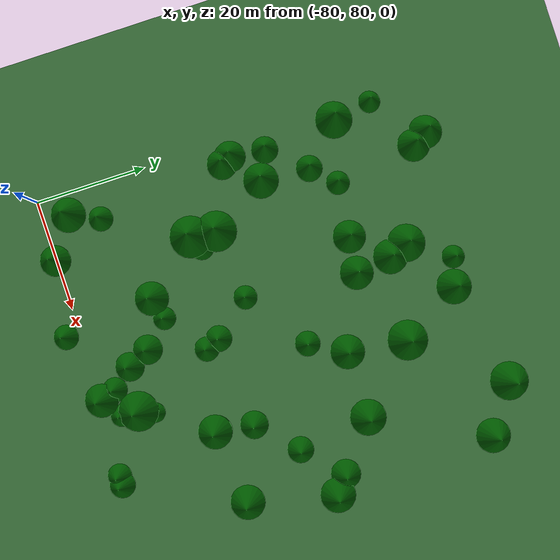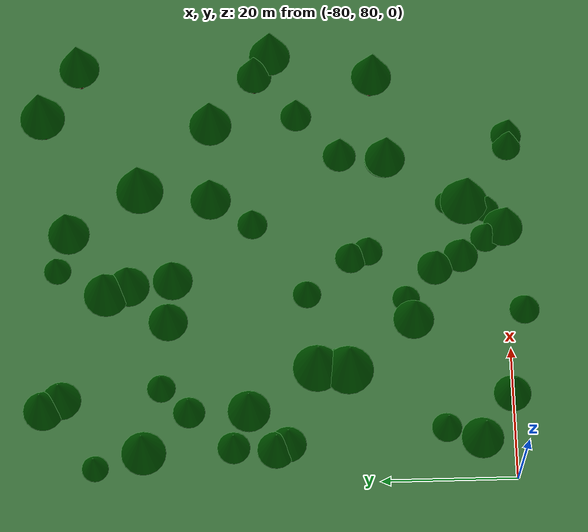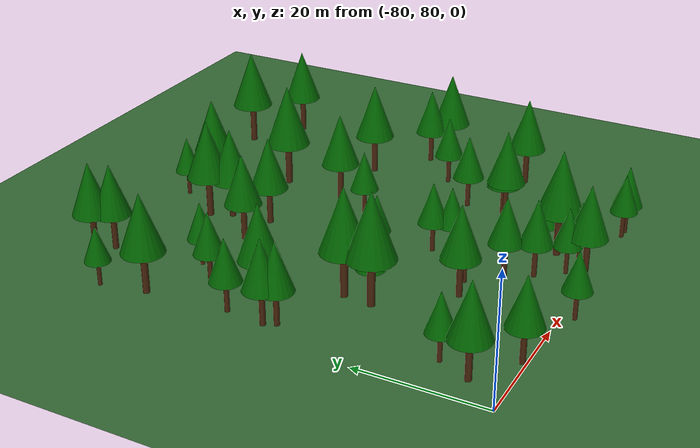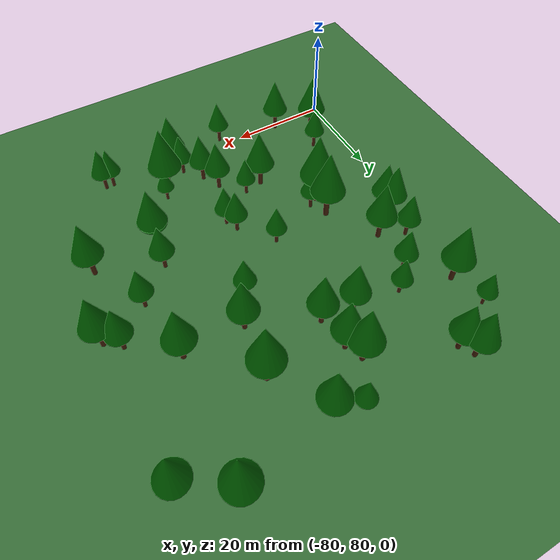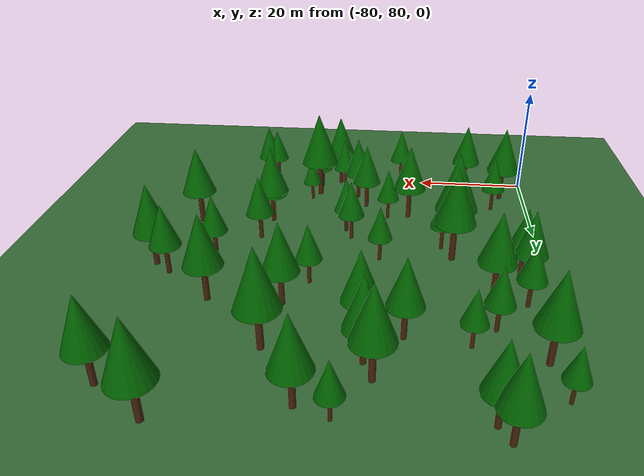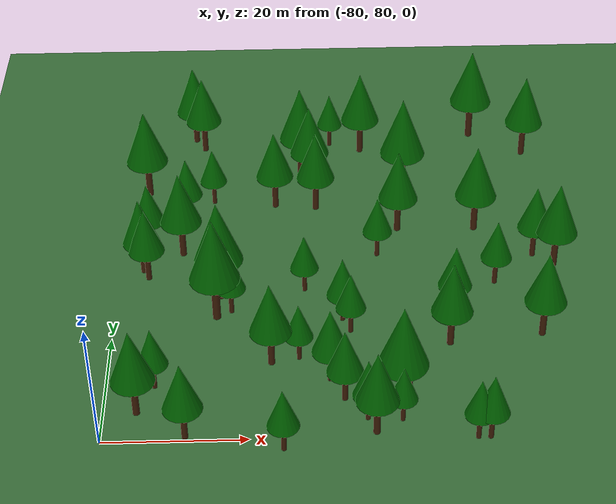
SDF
<sdf version="1.9">
 <world name="Forest_world">
  <model name="ground_plane">
   <static>true</static>
   <link name="link">
    <collision name="collision">
     <geometry><plane><normal>0 0 1</normal><size>500 500</size></plane></geometry>
    </collision>
    <visual name="visual">
     <geometry><plane><normal>0 0 1</normal><size>500 500</size></plane></geometry>
     <material><ambient>0.2 0.4 0.2 1</ambient><diffuse>0.2 0.4 0.2 1</diffuse></material>
    </visual>
   </link>
  </model>
  <model name="tree_2">
   <static>true</static>
   <pose>-51.11 136.40 0 0 0 0</pose>
   <link name="link">
    <collision name="trunk_col">
     <pose>0 0 3.07 0 0 0</pose>
     <geometry><cylinder><radius>0.49</radius><length>6.15</length></cylinder></geometry>
    </collision>
    <visual name="trunk_vis">
     <pose>0 0 3.07 0 0 0</pose>
     <geometry><cylinder><radius>0.49</radius><length>6.15</length></cylinder></geometry>
     <material><ambient>0.3 0.15 0.05 1</ambient><diffuse>0.3 0.15 0.05 1</diffuse></material>
    </visual>
    <collision name="leaves_col">
     <pose>0 0 10.45 0 0 0</pose>
     <geometry><cone><radius>3.07</radius><length>8.60</length></cone></geometry>
    </collision>
    <visual name="leaves_vis">
     <pose>0 0 10.45 0 0 0</pose>
     <geometry><cone><radius>3.07</radius><length>8.60</length></cone></geometry>
     <material><ambient>0.0 0.4 0.0 1</ambient><diffuse>0.0 0.4 0.0 1</diffuse></material>
    </visual>
   </link>
  </model>
  <model name="tree_9">
   <static>true</static>
   <pose>-39.32 83.02 0 0 0 0</pose>
   <link name="link">
    <collision name="trunk_col">
     <pose>0 0 1.98 0 0 0</pose>
     <geometry><cylinder><radius>0.32</radius><length>3.95</length></cylinder></geometry>
    </collision>
    <visual name="trunk_vis">
     <pose>0 0 1.98 0 0 0</pose>
     <geometry><cylinder><radius>0.32</radius><length>3.95</length></cylinder></geometry>
     <material><ambient>0.3 0.15 0.05 1</ambient><diffuse>0.3 0.15 0.05 1</diffuse></material>
    </visual>
    <collision name="leaves_col">
     <pose>0 0 6.72 0 0 0</pose>
     <geometry><cone><radius>1.98</radius><length>5.54</length></cone></geometry>
    </collision>
    <visual name="leaves_vis">
     <pose>0 0 6.72 0 0 0</pose>
     <geometry><cone><radius>1.98</radius><length>5.54</length></cone></geometry>
     <material><ambient>0.0 0.4 0.0 1</ambient><diffuse>0.0 0.4 0.0 1</diffuse></material>
    </visual>
   </link>
  </model>
  <model name="tree_11">
   <static>true</static>
   <pose>-41.16 118.00 0 0 0 0</pose>
   <link name="link">
    <collision name="trunk_col">
     <pose>0 0 2.25 0 0 0</pose>
     <geometry><cylinder><radius>0.36</radius><length>4.49</length></cylinder></geometry>
    </collision>
    <visual name="trunk_vis">
     <pose>0 0 2.25 0 0 0</pose>
     <geometry><cylinder><radius>0.36</radius><length>4.49</length></cylinder></geometry>
     <material><ambient>0.3 0.15 0.05 1</ambient><diffuse>0.3 0.15 0.05 1</diffuse></material>
    </visual>
    <collision name="leaves_col">
     <pose>0 0 7.64 0 0 0</pose>
     <geometry><cone><radius>2.25</radius><length>6.29</length></cone></geometry>
    </collision>
    <visual name="leaves_vis">
     <pose>0 0 7.64 0 0 0</pose>
     <geometry><cone><radius>2.25</radius><length>6.29</length></cone></geometry>
     <material><ambient>0.0 0.4 0.0 1</ambient><diffuse>0.0 0.4 0.0 1</diffuse></material>
    </visual>
   </link>
  </model>
  <model name="tree_12">
   <static>true</static>
   <pose>-63.00 105.64 0 0 0 0</pose>
   <link name="link">
    <collision name="trunk_col">
     <pose>0 0 2.24 0 0 0</pose>
     <geometry><cylinder><radius>0.36</radius><length>4.47</length></cylinder></geometry>
    </collision>
    <visual name="trunk_vis">
     <pose>0 0 2.24 0 0 0</pose>
     <geometry><cylinder><radius>0.36</radius><length>4.47</length></cylinder></geometry>
     <material><ambient>0.3 0.15 0.05 1</ambient><diffuse>0.3 0.15 0.05 1</diffuse></material>
    </visual>
    <collision name="leaves_col">
     <pose>0 0 7.61 0 0 0</pose>
     <geometry><cone><radius>2.24</radius><length>6.26</length></cone></geometry>
    </collision>
    <visual name="leaves_vis">
     <pose>0 0 7.61 0 0 0</pose>
     <geometry><cone><radius>2.24</radius><length>6.26</length></cone></geometry>
     <material><ambient>0.0 0.4 0.0 1</ambient><diffuse>0.0 0.4 0.0 1</diffuse></material>
    </visual>
   </link>
  </model>
  <model name="tree_17">
   <static>true</static>
   <pose>-78.15 141.54 0 0 0 0</pose>
   <link name="link">
    <collision name="trunk_col">
     <pose>0 0 1.96 0 0 0</pose>
     <geometry><cylinder><radius>0.31</radius><length>3.92</length></cylinder></geometry>
    </collision>
    <visual name="trunk_vis">
     <pose>0 0 1.96 0 0 0</pose>
     <geometry><cylinder><radius>0.31</radius><length>3.92</length></cylinder></geometry>
     <material><ambient>0.3 0.15 0.05 1</ambient><diffuse>0.3 0.15 0.05 1</diffuse></material>
    </visual>
    <collision name="leaves_col">
     <pose>0 0 6.67 0 0 0</pose>
     <geometry><cone><radius>1.96</radius><length>5.49</length></cone></geometry>
    </collision>
    <visual name="leaves_vis">
     <pose>0 0 6.67 0 0 0</pose>
     <geometry><cone><radius>1.96</radius><length>5.49</length></cone></geometry>
     <material><ambient>0.0 0.4 0.0 1</ambient><diffuse>0.0 0.4 0.0 1</diffuse></material>
    </visual>
   </link>
  </model>
  <model name="tree_18">
   <static>true</static>
   <pose>-75.57 113.54 0 0 0 0</pose>
   <link name="link">
    <collision name="trunk_col">
     <pose>0 0 2.69 0 0 0</pose>
     <geometry><cylinder><radius>0.43</radius><length>5.37</length></cylinder></geometry>
    </collision>
    <visual name="trunk_vis">
     <pose>0 0 2.69 0 0 0</pose>
     <geometry><cylinder><radius>0.43</radius><length>5.37</length></cylinder></geometry>
     <material><ambient>0.3 0.15 0.05 1</ambient><diffuse>0.3 0.15 0.05 1</diffuse></material>
    </visual>
    <collision name="leaves_col">
     <pose>0 0 9.14 0 0 0</pose>
     <geometry><cone><radius>2.69</radius><length>7.52</length></cone></geometry>
    </collision>
    <visual name="leaves_vis">
     <pose>0 0 9.14 0 0 0</pose>
     <geometry><cone><radius>2.69</radius><length>7.52</length></cone></geometry>
     <material><ambient>0.0 0.4 0.0 1</ambient><diffuse>0.0 0.4 0.0 1</diffuse></material>
    </visual>
   </link>
  </model>
  <model name="tree_26">
   <static>true</static>
   <pose>-76.75 134.41 0 0 0 0</pose>
   <link name="link">
    <collision name="trunk_col">
     <pose>0 0 3.26 0 0 0</pose>
     <geometry><cylinder><radius>0.52</radius><length>6.52</length></cylinder></geometry>
    </collision>
    <visual name="trunk_vis">
     <pose>0 0 3.26 0 0 0</pose>
     <geometry><cylinder><radius>0.52</radius><length>6.52</length></cylinder></geometry>
     <material><ambient>0.3 0.15 0.05 1</ambient><diffuse>0.3 0.15 0.05 1</diffuse></material>
    </visual>
    <collision name="leaves_col">
     <pose>0 0 11.08 0 0 0</pose>
     <geometry><cone><radius>3.26</radius><length>9.13</length></cone></geometry>
    </collision>
    <visual name="leaves_vis">
     <pose>0 0 11.08 0 0 0</pose>
     <geometry><cone><radius>3.26</radius><length>9.13</length></cone></geometry>
     <material><ambient>0.0 0.4 0.0 1</ambient><diffuse>0.0 0.4 0.0 1</diffuse></material>
    </visual>
   </link>
  </model>
  <model name="tree_28">
   <static>true</static>
   <pose>-53.22 95.50 0 0 0 0</pose>
   <link name="link">
    <collision name="trunk_col">
     <pose>0 0 2.05 0 0 0</pose>
     <geometry><cylinder><radius>0.33</radius><length>4.10</length></cylinder></geometry>
    </collision>
    <visual name="trunk_vis">
     <pose>0 0 2.05 0 0 0</pose>
     <geometry><cylinder><radius>0.33</radius><length>4.10</length></cylinder></geometry>
     <material><ambient>0.3 0.15 0.05 1</ambient><diffuse>0.3 0.15 0.05 1</diffuse></material>
    </visual>
    <collision name="leaves_col">
     <pose>0 0 6.97 0 0 0</pose>
     <geometry><cone><radius>2.05</radius><length>5.74</length></cone></geometry>
    </collision>
    <visual name="leaves_vis">
     <pose>0 0 6.97 0 0 0</pose>
     <geometry><cone><radius>2.05</radius><length>5.74</length></cone></geometry>
     <material><ambient>0.0 0.4 0.0 1</ambient><diffuse>0.0 0.4 0.0 1</diffuse></material>
    </visual>
   </link>
  </model>
  <model name="tree_33">
   <static>true</static>
   <pose>-52.27 110.15 0 0 0 0</pose>
   <link name="link">
    <collision name="trunk_col">
     <pose>0 0 2.12 0 0 0</pose>
     <geometry><cylinder><radius>0.34</radius><length>4.23</length></cylinder></geometry>
    </collision>
    <visual name="trunk_vis">
     <pose>0 0 2.12 0 0 0</pose>
     <geometry><cylinder><radius>0.34</radius><length>4.23</length></cylinder></geometry>
     <material><ambient>0.3 0.15 0.05 1</ambient><diffuse>0.3 0.15 0.05 1</diffuse></material>
    </visual>
    <collision name="leaves_col">
     <pose>0 0 7.20 0 0 0</pose>
     <geometry><cone><radius>2.12</radius><length>5.93</length></cone></geometry>
    </collision>
    <visual name="leaves_vis">
     <pose>0 0 7.20 0 0 0</pose>
     <geometry><cone><radius>2.12</radius><length>5.93</length></cone></geometry>
     <material><ambient>0.0 0.4 0.0 1</ambient><diffuse>0.0 0.4 0.0 1</diffuse></material>
    </visual>
   </link>
  </model>
  <model name="tree_53">
   <static>true</static>
   <pose>-68.32 146.31 0 0 0 0</pose>
   <link name="link">
    <collision name="trunk_col">
     <pose>0 0 2.88 0 0 0</pose>
     <geometry><cylinder><radius>0.46</radius><length>5.76</length></cylinder></geometry>
    </collision>
    <visual name="trunk_vis">
     <pose>0 0 2.88 0 0 0</pose>
     <geometry><cylinder><radius>0.46</radius><length>5.76</length></cylinder></geometry>
     <material><ambient>0.3 0.15 0.05 1</ambient><diffuse>0.3 0.15 0.05 1</diffuse></material>
    </visual>
    <collision name="leaves_col">
     <pose>0 0 9.79 0 0 0</pose>
     <geometry><cone><radius>2.88</radius><length>8.06</length></cone></geometry>
    </collision>
    <visual name="leaves_vis">
     <pose>0 0 9.79 0 0 0</pose>
     <geometry><cone><radius>2.88</radius><length>8.06</length></cone></geometry>
     <material><ambient>0.0 0.4 0.0 1</ambient><diffuse>0.0 0.4 0.0 1</diffuse></material>
    </visual>
   </link>
  </model>
  <model name="tree_69">
   <static>true</static>
   <pose>-17.45 117.24 0 0 0 0</pose>
   <link name="link">
    <collision name="trunk_col">
     <pose>0 0 2.65 0 0 0</pose>
     <geometry><cylinder><radius>0.42</radius><length>5.30</length></cylinder></geometry>
    </collision>
    <visual name="trunk_vis">
     <pose>0 0 2.65 0 0 0</pose>
     <geometry><cylinder><radius>0.42</radius><length>5.30</length></cylinder></geometry>
     <material><ambient>0.3 0.15 0.05 1</ambient><diffuse>0.3 0.15 0.05 1</diffuse></material>
    </visual>
    <collision name="leaves_col">
     <pose>0 0 9.01 0 0 0</pose>
     <geometry><cone><radius>2.65</radius><length>7.42</length></cone></geometry>
    </collision>
    <visual name="leaves_vis">
     <pose>0 0 9.01 0 0 0</pose>
     <geometry><cone><radius>2.65</radius><length>7.42</length></cone></geometry>
     <material><ambient>0.0 0.4 0.0 1</ambient><diffuse>0.0 0.4 0.0 1</diffuse></material>
    </visual>
   </link>
  </model>
  <model name="tree_79">
   <static>true</static>
   <pose>-25.77 123.99 0 0 0 0</pose>
   <link name="link">
    <collision name="trunk_col">
     <pose>0 0 3.20 0 0 0</pose>
     <geometry><cylinder><radius>0.51</radius><length>6.39</length></cylinder></geometry>
    </collision>
    <visual name="trunk_vis">
     <pose>0 0 3.20 0 0 0</pose>
     <geometry><cylinder><radius>0.51</radius><length>6.39</length></cylinder></geometry>
     <material><ambient>0.3 0.15 0.05 1</ambient><diffuse>0.3 0.15 0.05 1</diffuse></material>
    </visual>
    <collision name="leaves_col">
     <pose>0 0 10.86 0 0 0</pose>
     <geometry><cone><radius>3.20</radius><length>8.95</length></cone></geometry>
    </collision>
    <visual name="leaves_vis">
     <pose>0 0 10.86 0 0 0</pose>
     <geometry><cone><radius>3.20</radius><length>8.95</length></cone></geometry>
     <material><ambient>0.0 0.4 0.0 1</ambient><diffuse>0.0 0.4 0.0 1</diffuse></material>
    </visual>
   </link>
  </model>
  <model name="tree_84">
   <static>true</static>
   <pose>-24.20 149.21 0 0 0 0</pose>
   <link name="link">
    <collision name="trunk_col">
     <pose>0 0 3.39 0 0 0</pose>
     <geometry><cylinder><radius>0.54</radius><length>6.77</length></cylinder></geometry>
    </collision>
    <visual name="trunk_vis">
     <pose>0 0 3.39 0 0 0</pose>
     <geometry><cylinder><radius>0.54</radius><length>6.77</length></cylinder></geometry>
     <material><ambient>0.3 0.15 0.05 1</ambient><diffuse>0.3 0.15 0.05 1</diffuse></material>
    </visual>
    <collision name="leaves_col">
     <pose>0 0 11.51 0 0 0</pose>
     <geometry><cone><radius>3.39</radius><length>9.48</length></cone></geometry>
    </collision>
    <visual name="leaves_vis">
     <pose>0 0 11.51 0 0 0</pose>
     <geometry><cone><radius>3.39</radius><length>9.48</length></cone></geometry>
     <material><ambient>0.0 0.4 0.0 1</ambient><diffuse>0.0 0.4 0.0 1</diffuse></material>
    </visual>
   </link>
  </model>
  <model name="tree_85">
   <static>true</static>
   <pose>-44.02 83.40 0 0 0 0</pose>
   <link name="link">
    <collision name="trunk_col">
     <pose>0 0 2.21 0 0 0</pose>
     <geometry><cylinder><radius>0.35</radius><length>4.41</length></cylinder></geometry>
    </collision>
    <visual name="trunk_vis">
     <pose>0 0 2.21 0 0 0</pose>
     <geometry><cylinder><radius>0.35</radius><length>4.41</length></cylinder></geometry>
     <material><ambient>0.3 0.15 0.05 1</ambient><diffuse>0.3 0.15 0.05 1</diffuse></material>
    </visual>
    <collision name="leaves_col">
     <pose>0 0 7.50 0 0 0</pose>
     <geometry><cone><radius>2.21</radius><length>6.17</length></cone></geometry>
    </collision>
    <visual name="leaves_vis">
     <pose>0 0 7.50 0 0 0</pose>
     <geometry><cone><radius>2.21</radius><length>6.17</length></cone></geometry>
     <material><ambient>0.0 0.4 0.0 1</ambient><diffuse>0.0 0.4 0.0 1</diffuse></material>
    </visual>
   </link>
  </model>
  <model name="tree_88">
   <static>true</static>
   <pose>-48.90 91.12 0 0 0 0</pose>
   <link name="link">
    <collision name="trunk_col">
     <pose>0 0 2.64 0 0 0</pose>
     <geometry><cylinder><radius>0.42</radius><length>5.28</length></cylinder></geometry>
    </collision>
    <visual name="trunk_vis">
     <pose>0 0 2.64 0 0 0</pose>
     <geometry><cylinder><radius>0.42</radius><length>5.28</length></cylinder></geometry>
     <material><ambient>0.3 0.15 0.05 1</ambient><diffuse>0.3 0.15 0.05 1</diffuse></material>
    </visual>
    <collision name="leaves_col">
     <pose>0 0 8.98 0 0 0</pose>
     <geometry><cone><radius>2.64</radius><length>7.39</length></cone></geometry>
    </collision>
    <visual name="leaves_vis">
     <pose>0 0 8.98 0 0 0</pose>
     <geometry><cone><radius>2.64</radius><length>7.39</length></cone></geometry>
     <material><ambient>0.0 0.4 0.0 1</ambient><diffuse>0.0 0.4 0.0 1</diffuse></material>
    </visual>
   </link>
  </model>
  <model name="tree_92">
   <static>true</static>
   <pose>-70.23 127.83 0 0 0 0</pose>
   <link name="link">
    <collision name="trunk_col">
     <pose>0 0 2.36 0 0 0</pose>
     <geometry><cylinder><radius>0.38</radius><length>4.73</length></cylinder></geometry>
    </collision>
    <visual name="trunk_vis">
     <pose>0 0 2.36 0 0 0</pose>
     <geometry><cylinder><radius>0.38</radius><length>4.73</length></cylinder></geometry>
     <material><ambient>0.3 0.15 0.05 1</ambient><diffuse>0.3 0.15 0.05 1</diffuse></material>
    </visual>
    <collision name="leaves_col">
     <pose>0 0 8.04 0 0 0</pose>
     <geometry><cone><radius>2.36</radius><length>6.62</length></cone></geometry>
    </collision>
    <visual name="leaves_vis">
     <pose>0 0 8.04 0 0 0</pose>
     <geometry><cone><radius>2.36</radius><length>6.62</length></cone></geometry>
     <material><ambient>0.0 0.4 0.0 1</ambient><diffuse>0.0 0.4 0.0 1</diffuse></material>
    </visual>
   </link>
  </model>
  <model name="tree_94">
   <static>true</static>
   <pose>-42.71 145.27 0 0 0 0</pose>
   <link name="link">
    <collision name="trunk_col">
     <pose>0 0 3.10 0 0 0</pose>
     <geometry><cylinder><radius>0.50</radius><length>6.20</length></cylinder></geometry>
    </collision>
    <visual name="trunk_vis">
     <pose>0 0 3.10 0 0 0</pose>
     <geometry><cylinder><radius>0.50</radius><length>6.20</length></cylinder></geometry>
     <material><ambient>0.3 0.15 0.05 1</ambient><diffuse>0.3 0.15 0.05 1</diffuse></material>
    </visual>
    <collision name="leaves_col">
     <pose>0 0 10.55 0 0 0</pose>
     <geometry><cone><radius>3.10</radius><length>8.69</length></cone></geometry>
    </collision>
    <visual name="leaves_vis">
     <pose>0 0 10.55 0 0 0</pose>
     <geometry><cone><radius>3.10</radius><length>8.69</length></cone></geometry>
     <material><ambient>0.0 0.4 0.0 1</ambient><diffuse>0.0 0.4 0.0 1</diffuse></material>
    </visual>
   </link>
  </model>
  <model name="tree_97">
   <static>true</static>
   <pose>-75.46 85.39 0 0 0 0</pose>
   <link name="link">
    <collision name="trunk_col">
     <pose>0 0 3.08 0 0 0</pose>
     <geometry><cylinder><radius>0.49</radius><length>6.15</length></cylinder></geometry>
    </collision>
    <visual name="trunk_vis">
     <pose>0 0 3.08 0 0 0</pose>
     <geometry><cylinder><radius>0.49</radius><length>6.15</length></cylinder></geometry>
     <material><ambient>0.3 0.15 0.05 1</ambient><diffuse>0.3 0.15 0.05 1</diffuse></material>
    </visual>
    <collision name="leaves_col">
     <pose>0 0 10.46 0 0 0</pose>
     <geometry><cone><radius>3.08</radius><length>8.61</length></cone></geometry>
    </collision>
    <visual name="leaves_vis">
     <pose>0 0 10.46 0 0 0</pose>
     <geometry><cone><radius>3.08</radius><length>8.61</length></cone></geometry>
     <material><ambient>0.0 0.4 0.0 1</ambient><diffuse>0.0 0.4 0.0 1</diffuse></material>
    </visual>
   </link>
  </model>
  <model name="tree_105">
   <static>true</static>
   <pose>-31.66 98.21 0 0 0 0</pose>
   <link name="link">
    <collision name="trunk_col">
     <pose>0 0 2.77 0 0 0</pose>
     <geometry><cylinder><radius>0.44</radius><length>5.55</length></cylinder></geometry>
    </collision>
    <visual name="trunk_vis">
     <pose>0 0 2.77 0 0 0</pose>
     <geometry><cylinder><radius>0.44</radius><length>5.55</length></cylinder></geometry>
     <material><ambient>0.3 0.15 0.05 1</ambient><diffuse>0.3 0.15 0.05 1</diffuse></material>
    </visual>
    <collision name="leaves_col">
     <pose>0 0 9.43 0 0 0</pose>
     <geometry><cone><radius>2.77</radius><length>7.77</length></cone></geometry>
    </collision>
    <visual name="leaves_vis">
     <pose>0 0 9.43 0 0 0</pose>
     <geometry><cone><radius>2.77</radius><length>7.77</length></cone></geometry>
     <material><ambient>0.0 0.4 0.0 1</ambient><diffuse>0.0 0.4 0.0 1</diffuse></material>
    </visual>
   </link>
  </model>
  <model name="tree_107">
   <static>true</static>
   <pose>-14.53 114.82 0 0 0 0</pose>
   <link name="link">
    <collision name="trunk_col">
     <pose>0 0 3.12 0 0 0</pose>
     <geometry><cylinder><radius>0.50</radius><length>6.24</length></cylinder></geometry>
    </collision>
    <visual name="trunk_vis">
     <pose>0 0 3.12 0 0 0</pose>
     <geometry><cylinder><radius>0.50</radius><length>6.24</length></cylinder></geometry>
     <material><ambient>0.3 0.15 0.05 1</ambient><diffuse>0.3 0.15 0.05 1</diffuse></material>
    </visual>
    <collision name="leaves_col">
     <pose>0 0 10.61 0 0 0</pose>
     <geometry><cone><radius>3.12</radius><length>8.74</length></cone></geometry>
    </collision>
    <visual name="leaves_vis">
     <pose>0 0 10.61 0 0 0</pose>
     <geometry><cone><radius>3.12</radius><length>8.74</length></cone></geometry>
     <material><ambient>0.0 0.4 0.0 1</ambient><diffuse>0.0 0.4 0.0 1</diffuse></material>
    </visual>
   </link>
  </model>
  <model name="tree_108">
   <static>true</static>
   <pose>-76.42 115.26 0 0 0 0</pose>
   <link name="link">
    <collision name="trunk_col">
     <pose>0 0 2.78 0 0 0</pose>
     <geometry><cylinder><radius>0.44</radius><length>5.56</length></cylinder></geometry>
    </collision>
    <visual name="trunk_vis">
     <pose>0 0 2.78 0 0 0</pose>
     <geometry><cylinder><radius>0.44</radius><length>5.56</length></cylinder></geometry>
     <material><ambient>0.3 0.15 0.05 1</ambient><diffuse>0.3 0.15 0.05 1</diffuse></material>
    </visual>
    <collision name="leaves_col">
     <pose>0 0 9.45 0 0 0</pose>
     <geometry><cone><radius>2.78</radius><length>7.79</length></cone></geometry>
    </collision>
    <visual name="leaves_vis">
     <pose>0 0 9.45 0 0 0</pose>
     <geometry><cone><radius>2.78</radius><length>7.79</length></cone></geometry>
     <material><ambient>0.0 0.4 0.0 1</ambient><diffuse>0.0 0.4 0.0 1</diffuse></material>
    </visual>
   </link>
  </model>
  <model name="tree_115">
   <static>true</static>
   <pose>-75.75 121.42 0 0 0 0</pose>
   <link name="link">
    <collision name="trunk_col">
     <pose>0 0 2.40 0 0 0</pose>
     <geometry><cylinder><radius>0.38</radius><length>4.80</length></cylinder></geometry>
    </collision>
    <visual name="trunk_vis">
     <pose>0 0 2.40 0 0 0</pose>
     <geometry><cylinder><radius>0.38</radius><length>4.80</length></cylinder></geometry>
     <material><ambient>0.3 0.15 0.05 1</ambient><diffuse>0.3 0.15 0.05 1</diffuse></material>
    </visual>
    <collision name="leaves_col">
     <pose>0 0 8.15 0 0 0</pose>
     <geometry><cone><radius>2.40</radius><length>6.72</length></cone></geometry>
    </collision>
    <visual name="leaves_vis">
     <pose>0 0 8.15 0 0 0</pose>
     <geometry><cone><radius>2.40</radius><length>6.72</length></cone></geometry>
     <material><ambient>0.0 0.4 0.0 1</ambient><diffuse>0.0 0.4 0.0 1</diffuse></material>
    </visual>
   </link>
  </model>
  <model name="tree_116">
   <static>true</static>
   <pose>-55.42 78.12 0 0 0 0</pose>
   <link name="link">
    <collision name="trunk_col">
     <pose>0 0 2.23 0 0 0</pose>
     <geometry><cylinder><radius>0.36</radius><length>4.46</length></cylinder></geometry>
    </collision>
    <visual name="trunk_vis">
     <pose>0 0 2.23 0 0 0</pose>
     <geometry><cylinder><radius>0.36</radius><length>4.46</length></cylinder></geometry>
     <material><ambient>0.3 0.15 0.05 1</ambient><diffuse>0.3 0.15 0.05 1</diffuse></material>
    </visual>
    <collision name="leaves_col">
     <pose>0 0 7.58 0 0 0</pose>
     <geometry><cone><radius>2.23</radius><length>6.24</length></cone></geometry>
    </collision>
    <visual name="leaves_vis">
     <pose>0 0 7.58 0 0 0</pose>
     <geometry><cone><radius>2.23</radius><length>6.24</length></cone></geometry>
     <material><ambient>0.0 0.4 0.0 1</ambient><diffuse>0.0 0.4 0.0 1</diffuse></material>
    </visual>
   </link>
  </model>
  <model name="tree_119">
   <static>true</static>
   <pose>-64.68 109.02 0 0 0 0</pose>
   <link name="link">
    <collision name="trunk_col">
     <pose>0 0 3.59 0 0 0</pose>
     <geometry><cylinder><radius>0.57</radius><length>7.18</length></cylinder></geometry>
    </collision>
    <visual name="trunk_vis">
     <pose>0 0 3.59 0 0 0</pose>
     <geometry><cylinder><radius>0.57</radius><length>7.18</length></cylinder></geometry>
     <material><ambient>0.3 0.15 0.05 1</ambient><diffuse>0.3 0.15 0.05 1</diffuse></material>
    </visual>
    <collision name="leaves_col">
     <pose>0 0 12.21 0 0 0</pose>
     <geometry><cone><radius>3.59</radius><length>10.05</length></cone></geometry>
    </collision>
    <visual name="leaves_vis">
     <pose>0 0 12.21 0 0 0</pose>
     <geometry><cone><radius>3.59</radius><length>10.05</length></cone></geometry>
     <material><ambient>0.0 0.4 0.0 1</ambient><diffuse>0.0 0.4 0.0 1</diffuse></material>
    </visual>
   </link>
  </model>
  <model name="tree_126">
   <static>true</static>
   <pose>-73.27 90.36 0 0 0 0</pose>
   <link name="link">
    <collision name="trunk_col">
     <pose>0 0 2.20 0 0 0</pose>
     <geometry><cylinder><radius>0.35</radius><length>4.40</length></cylinder></geometry>
    </collision>
    <visual name="trunk_vis">
     <pose>0 0 2.20 0 0 0</pose>
     <geometry><cylinder><radius>0.35</radius><length>4.40</length></cylinder></geometry>
     <material><ambient>0.3 0.15 0.05 1</ambient><diffuse>0.3 0.15 0.05 1</diffuse></material>
    </visual>
    <collision name="leaves_col">
     <pose>0 0 7.47 0 0 0</pose>
     <geometry><cone><radius>2.20</radius><length>6.16</length></cone></geometry>
    </collision>
    <visual name="leaves_vis">
     <pose>0 0 7.47 0 0 0</pose>
     <geometry><cone><radius>2.20</radius><length>6.16</length></cone></geometry>
     <material><ambient>0.0 0.4 0.0 1</ambient><diffuse>0.0 0.4 0.0 1</diffuse></material>
    </visual>
   </link>
  </model>
  <model name="tree_127">
   <static>true</static>
   <pose>-42.96 80.81 0 0 0 0</pose>
   <link name="link">
    <collision name="trunk_col">
     <pose>0 0 2.97 0 0 0</pose>
     <geometry><cylinder><radius>0.48</radius><length>5.94</length></cylinder></geometry>
    </collision>
    <visual name="trunk_vis">
     <pose>0 0 2.97 0 0 0</pose>
     <geometry><cylinder><radius>0.48</radius><length>5.94</length></cylinder></geometry>
     <material><ambient>0.3 0.15 0.05 1</ambient><diffuse>0.3 0.15 0.05 1</diffuse></material>
    </visual>
    <collision name="leaves_col">
     <pose>0 0 10.10 0 0 0</pose>
     <geometry><cone><radius>2.97</radius><length>8.32</length></cone></geometry>
    </collision>
    <visual name="leaves_vis">
     <pose>0 0 10.10 0 0 0</pose>
     <geometry><cone><radius>2.97</radius><length>8.32</length></cone></geometry>
     <material><ambient>0.0 0.4 0.0 1</ambient><diffuse>0.0 0.4 0.0 1</diffuse></material>
    </visual>
   </link>
  </model>
  <model name="tree_131">
   <static>true</static>
   <pose>-56.64 130.69 0 0 0 0</pose>
   <link name="link">
    <collision name="trunk_col">
     <pose>0 0 2.91 0 0 0</pose>
     <geometry><cylinder><radius>0.47</radius><length>5.81</length></cylinder></geometry>
    </collision>
    <visual name="trunk_vis">
     <pose>0 0 2.91 0 0 0</pose>
     <geometry><cylinder><radius>0.47</radius><length>5.81</length></cylinder></geometry>
     <material><ambient>0.3 0.15 0.05 1</ambient><diffuse>0.3 0.15 0.05 1</diffuse></material>
    </visual>
    <collision name="leaves_col">
     <pose>0 0 9.89 0 0 0</pose>
     <geometry><cone><radius>2.91</radius><length>8.14</length></cone></geometry>
    </collision>
    <visual name="leaves_vis">
     <pose>0 0 9.89 0 0 0</pose>
     <geometry><cone><radius>2.91</radius><length>8.14</length></cone></geometry>
     <material><ambient>0.0 0.4 0.0 1</ambient><diffuse>0.0 0.4 0.0 1</diffuse></material>
    </visual>
   </link>
  </model>
  <model name="tree_135">
   <static>true</static>
   <pose>-46.86 103.51 0 0 0 0</pose>
   <link name="link">
    <collision name="trunk_col">
     <pose>0 0 2.34 0 0 0</pose>
     <geometry><cylinder><radius>0.37</radius><length>4.68</length></cylinder></geometry>
    </collision>
    <visual name="trunk_vis">
     <pose>0 0 2.34 0 0 0</pose>
     <geometry><cylinder><radius>0.37</radius><length>4.68</length></cylinder></geometry>
     <material><ambient>0.3 0.15 0.05 1</ambient><diffuse>0.3 0.15 0.05 1</diffuse></material>
    </visual>
    <collision name="leaves_col">
     <pose>0 0 7.96 0 0 0</pose>
     <geometry><cone><radius>2.34</radius><length>6.55</length></cone></geometry>
    </collision>
    <visual name="leaves_vis">
     <pose>0 0 7.96 0 0 0</pose>
     <geometry><cone><radius>2.34</radius><length>6.55</length></cone></geometry>
     <material><ambient>0.0 0.4 0.0 1</ambient><diffuse>0.0 0.4 0.0 1</diffuse></material>
    </visual>
   </link>
  </model>
  <model name="tree_146">
   <static>true</static>
   <pose>-45.77 100.92 0 0 0 0</pose>
   <link name="link">
    <collision name="trunk_col">
     <pose>0 0 2.21 0 0 0</pose>
     <geometry><cylinder><radius>0.35</radius><length>4.42</length></cylinder></geometry>
    </collision>
    <visual name="trunk_vis">
     <pose>0 0 2.21 0 0 0</pose>
     <geometry><cylinder><radius>0.35</radius><length>4.42</length></cylinder></geometry>
     <material><ambient>0.3 0.15 0.05 1</ambient><diffuse>0.3 0.15 0.05 1</diffuse></material>
    </visual>
    <collision name="leaves_col">
     <pose>0 0 7.51 0 0 0</pose>
     <geometry><cone><radius>2.21</radius><length>6.19</length></cone></geometry>
    </collision>
    <visual name="leaves_vis">
     <pose>0 0 7.51 0 0 0</pose>
     <geometry><cone><radius>2.21</radius><length>6.19</length></cone></geometry>
     <material><ambient>0.0 0.4 0.0 1</ambient><diffuse>0.0 0.4 0.0 1</diffuse></material>
    </visual>
   </link>
  </model>
  <model name="tree_165">
   <static>true</static>
   <pose>-68.65 80.68 0 0 0 0</pose>
   <link name="link">
    <collision name="trunk_col">
     <pose>0 0 2.75 0 0 0</pose>
     <geometry><cylinder><radius>0.44</radius><length>5.49</length></cylinder></geometry>
    </collision>
    <visual name="trunk_vis">
     <pose>0 0 2.75 0 0 0</pose>
     <geometry><cylinder><radius>0.44</radius><length>5.49</length></cylinder></geometry>
     <material><ambient>0.3 0.15 0.05 1</ambient><diffuse>0.3 0.15 0.05 1</diffuse></material>
    </visual>
    <collision name="leaves_col">
     <pose>0 0 9.34 0 0 0</pose>
     <geometry><cone><radius>2.75</radius><length>7.69</length></cone></geometry>
    </collision>
    <visual name="leaves_vis">
     <pose>0 0 9.34 0 0 0</pose>
     <geometry><cone><radius>2.75</radius><length>7.69</length></cone></geometry>
     <material><ambient>0.0 0.4 0.0 1</ambient><diffuse>0.0 0.4 0.0 1</diffuse></material>
    </visual>
   </link>
  </model>
  <model name="tree_166">
   <static>true</static>
   <pose>-37.96 88.78 0 0 0 0</pose>
   <link name="link">
    <collision name="trunk_col">
     <pose>0 0 1.79 0 0 0</pose>
     <geometry><cylinder><radius>0.29</radius><length>3.57</length></cylinder></geometry>
    </collision>
    <visual name="trunk_vis">
     <pose>0 0 1.79 0 0 0</pose>
     <geometry><cylinder><radius>0.29</radius><length>3.57</length></cylinder></geometry>
     <material><ambient>0.3 0.15 0.05 1</ambient><diffuse>0.3 0.15 0.05 1</diffuse></material>
    </visual>
    <collision name="leaves_col">
     <pose>0 0 6.08 0 0 0</pose>
     <geometry><cone><radius>1.79</radius><length>5.00</length></cone></geometry>
    </collision>
    <visual name="leaves_vis">
     <pose>0 0 6.08 0 0 0</pose>
     <geometry><cone><radius>1.79</radius><length>5.00</length></cone></geometry>
     <material><ambient>0.0 0.4 0.0 1</ambient><diffuse>0.0 0.4 0.0 1</diffuse></material>
    </visual>
   </link>
  </model>
  <model name="tree_175">
   <static>true</static>
   <pose>-31.62 97.92 0 0 0 0</pose>
   <link name="link">
    <collision name="trunk_col">
     <pose>0 0 3.03 0 0 0</pose>
     <geometry><cylinder><radius>0.49</radius><length>6.07</length></cylinder></geometry>
    </collision>
    <visual name="trunk_vis">
     <pose>0 0 3.03 0 0 0</pose>
     <geometry><cylinder><radius>0.49</radius><length>6.07</length></cylinder></geometry>
     <material><ambient>0.3 0.15 0.05 1</ambient><diffuse>0.3 0.15 0.05 1</diffuse></material>
    </visual>
    <collision name="leaves_col">
     <pose>0 0 10.32 0 0 0</pose>
     <geometry><cone><radius>3.03</radius><length>8.50</length></cone></geometry>
    </collision>
    <visual name="leaves_vis">
     <pose>0 0 10.32 0 0 0</pose>
     <geometry><cone><radius>3.03</radius><length>8.50</length></cone></geometry>
     <material><ambient>0.0 0.4 0.0 1</ambient><diffuse>0.0 0.4 0.0 1</diffuse></material>
    </visual>
   </link>
  </model>
  <model name="tree_180">
   <static>true</static>
   <pose>-15.94 143.71 0 0 0 0</pose>
   <link name="link">
    <collision name="trunk_col">
     <pose>0 0 3.06 0 0 0</pose>
     <geometry><cylinder><radius>0.49</radius><length>6.13</length></cylinder></geometry>
    </collision>
    <visual name="trunk_vis">
     <pose>0 0 3.06 0 0 0</pose>
     <geometry><cylinder><radius>0.49</radius><length>6.13</length></cylinder></geometry>
     <material><ambient>0.3 0.15 0.05 1</ambient><diffuse>0.3 0.15 0.05 1</diffuse></material>
    </visual>
    <collision name="leaves_col">
     <pose>0 0 10.42 0 0 0</pose>
     <geometry><cone><radius>3.06</radius><length>8.58</length></cone></geometry>
    </collision>
    <visual name="leaves_vis">
     <pose>0 0 10.42 0 0 0</pose>
     <geometry><cone><radius>3.06</radius><length>8.58</length></cone></geometry>
     <material><ambient>0.0 0.4 0.0 1</ambient><diffuse>0.0 0.4 0.0 1</diffuse></material>
    </visual>
   </link>
  </model>
  <model name="tree_181">
   <static>true</static>
   <pose>-27.75 79.47 0 0 0 0</pose>
   <link name="link">
    <collision name="trunk_col">
     <pose>0 0 2.32 0 0 0</pose>
     <geometry><cylinder><radius>0.37</radius><length>4.63</length></cylinder></geometry>
    </collision>
    <visual name="trunk_vis">
     <pose>0 0 2.32 0 0 0</pose>
     <geometry><cylinder><radius>0.37</radius><length>4.63</length></cylinder></geometry>
     <material><ambient>0.3 0.15 0.05 1</ambient><diffuse>0.3 0.15 0.05 1</diffuse></material>
    </visual>
    <collision name="leaves_col">
     <pose>0 0 7.87 0 0 0</pose>
     <geometry><cone><radius>2.32</radius><length>6.48</length></cone></geometry>
    </collision>
    <visual name="leaves_vis">
     <pose>0 0 7.87 0 0 0</pose>
     <geometry><cone><radius>2.32</radius><length>6.48</length></cone></geometry>
     <material><ambient>0.0 0.4 0.0 1</ambient><diffuse>0.0 0.4 0.0 1</diffuse></material>
    </visual>
   </link>
  </model>
  <model name="tree_182">
   <static>true</static>
   <pose>-47.69 147.06 0 0 0 0</pose>
   <link name="link">
    <collision name="trunk_col">
     <pose>0 0 2.04 0 0 0</pose>
     <geometry><cylinder><radius>0.33</radius><length>4.07</length></cylinder></geometry>
    </collision>
    <visual name="trunk_vis">
     <pose>0 0 2.04 0 0 0</pose>
     <geometry><cylinder><radius>0.33</radius><length>4.07</length></cylinder></geometry>
     <material><ambient>0.3 0.15 0.05 1</ambient><diffuse>0.3 0.15 0.05 1</diffuse></material>
    </visual>
    <collision name="leaves_col">
     <pose>0 0 6.93 0 0 0</pose>
     <geometry><cone><radius>2.04</radius><length>5.70</length></cone></geometry>
    </collision>
    <visual name="leaves_vis">
     <pose>0 0 6.93 0 0 0</pose>
     <geometry><cone><radius>2.04</radius><length>5.70</length></cone></geometry>
     <material><ambient>0.0 0.4 0.0 1</ambient><diffuse>0.0 0.4 0.0 1</diffuse></material>
    </visual>
   </link>
  </model>
  <model name="tree_183">
   <static>true</static>
   <pose>-36.42 134.65 0 0 0 0</pose>
   <link name="link">
    <collision name="trunk_col">
     <pose>0 0 3.54 0 0 0</pose>
     <geometry><cylinder><radius>0.57</radius><length>7.08</length></cylinder></geometry>
    </collision>
    <visual name="trunk_vis">
     <pose>0 0 3.54 0 0 0</pose>
     <geometry><cylinder><radius>0.57</radius><length>7.08</length></cylinder></geometry>
     <material><ambient>0.3 0.15 0.05 1</ambient><diffuse>0.3 0.15 0.05 1</diffuse></material>
    </visual>
    <collision name="leaves_col">
     <pose>0 0 12.03 0 0 0</pose>
     <geometry><cone><radius>3.54</radius><length>9.91</length></cone></geometry>
    </collision>
    <visual name="leaves_vis">
     <pose>0 0 12.03 0 0 0</pose>
     <geometry><cone><radius>3.54</radius><length>9.91</length></cone></geometry>
     <material><ambient>0.0 0.4 0.0 1</ambient><diffuse>0.0 0.4 0.0 1</diffuse></material>
    </visual>
   </link>
  </model>
  <model name="tree_192">
   <static>true</static>
   <pose>-66.32 131.85 0 0 0 0</pose>
   <link name="link">
    <collision name="trunk_col">
     <pose>0 0 2.11 0 0 0</pose>
     <geometry><cylinder><radius>0.34</radius><length>4.22</length></cylinder></geometry>
    </collision>
    <visual name="trunk_vis">
     <pose>0 0 2.11 0 0 0</pose>
     <geometry><cylinder><radius>0.34</radius><length>4.22</length></cylinder></geometry>
     <material><ambient>0.3 0.15 0.05 1</ambient><diffuse>0.3 0.15 0.05 1</diffuse></material>
    </visual>
    <collision name="leaves_col">
     <pose>0 0 7.18 0 0 0</pose>
     <geometry><cone><radius>2.11</radius><length>5.91</length></cone></geometry>
    </collision>
    <visual name="leaves_vis">
     <pose>0 0 7.18 0 0 0</pose>
     <geometry><cone><radius>2.11</radius><length>5.91</length></cone></geometry>
     <material><ambient>0.0 0.4 0.0 1</ambient><diffuse>0.0 0.4 0.0 1</diffuse></material>
    </visual>
   </link>
  </model>
  <model name="tree_202">
   <static>true</static>
   <pose>-30.59 104.71 0 0 0 0</pose>
   <link name="link">
    <collision name="trunk_col">
     <pose>0 0 2.50 0 0 0</pose>
     <geometry><cylinder><radius>0.40</radius><length>4.99</length></cylinder></geometry>
    </collision>
    <visual name="trunk_vis">
     <pose>0 0 2.50 0 0 0</pose>
     <geometry><cylinder><radius>0.40</radius><length>4.99</length></cylinder></geometry>
     <material><ambient>0.3 0.15 0.05 1</ambient><diffuse>0.3 0.15 0.05 1</diffuse></material>
    </visual>
    <collision name="leaves_col">
     <pose>0 0 8.49 0 0 0</pose>
     <geometry><cone><radius>2.50</radius><length>6.99</length></cone></geometry>
    </collision>
    <visual name="leaves_vis">
     <pose>0 0 8.49 0 0 0</pose>
     <geometry><cone><radius>2.50</radius><length>6.99</length></cone></geometry>
     <material><ambient>0.0 0.4 0.0 1</ambient><diffuse>0.0 0.4 0.0 1</diffuse></material>
    </visual>
   </link>
  </model>
  <model name="tree_211">
   <static>true</static>
   <pose>-39.25 86.48 0 0 0 0</pose>
   <link name="link">
    <collision name="trunk_col">
     <pose>0 0 3.53 0 0 0</pose>
     <geometry><cylinder><radius>0.56</radius><length>7.05</length></cylinder></geometry>
    </collision>
    <visual name="trunk_vis">
     <pose>0 0 3.53 0 0 0</pose>
     <geometry><cylinder><radius>0.56</radius><length>7.05</length></cylinder></geometry>
     <material><ambient>0.3 0.15 0.05 1</ambient><diffuse>0.3 0.15 0.05 1</diffuse></material>
    </visual>
    <collision name="leaves_col">
     <pose>0 0 11.99 0 0 0</pose>
     <geometry><cone><radius>3.53</radius><length>9.87</length></cone></geometry>
    </collision>
    <visual name="leaves_vis">
     <pose>0 0 11.99 0 0 0</pose>
     <geometry><cone><radius>3.53</radius><length>9.87</length></cone></geometry>
     <material><ambient>0.0 0.4 0.0 1</ambient><diffuse>0.0 0.4 0.0 1</diffuse></material>
    </visual>
   </link>
  </model>
  <model name="tree_213">
   <static>true</static>
   <pose>-29.41 79.47 0 0 0 0</pose>
   <link name="link">
    <collision name="trunk_col">
     <pose>0 0 2.16 0 0 0</pose>
     <geometry><cylinder><radius>0.35</radius><length>4.32</length></cylinder></geometry>
    </collision>
    <visual name="trunk_vis">
     <pose>0 0 2.16 0 0 0</pose>
     <geometry><cylinder><radius>0.35</radius><length>4.32</length></cylinder></geometry>
     <material><ambient>0.3 0.15 0.05 1</ambient><diffuse>0.3 0.15 0.05 1</diffuse></material>
    </visual>
    <collision name="leaves_col">
     <pose>0 0 7.34 0 0 0</pose>
     <geometry><cone><radius>2.16</radius><length>6.04</length></cone></geometry>
    </collision>
    <visual name="leaves_vis">
     <pose>0 0 7.34 0 0 0</pose>
     <geometry><cone><radius>2.16</radius><length>6.04</length></cone></geometry>
     <material><ambient>0.0 0.4 0.0 1</ambient><diffuse>0.0 0.4 0.0 1</diffuse></material>
    </visual>
   </link>
  </model>
  <model name="tree_220">
   <static>true</static>
   <pose>-23.90 111.06 0 0 0 0</pose>
   <link name="link">
    <collision name="trunk_col">
     <pose>0 0 2.36 0 0 0</pose>
     <geometry><cylinder><radius>0.38</radius><length>4.73</length></cylinder></geometry>
    </collision>
    <visual name="trunk_vis">
     <pose>0 0 2.36 0 0 0</pose>
     <geometry><cylinder><radius>0.38</radius><length>4.73</length></cylinder></geometry>
     <material><ambient>0.3 0.15 0.05 1</ambient><diffuse>0.3 0.15 0.05 1</diffuse></material>
    </visual>
    <collision name="leaves_col">
     <pose>0 0 8.04 0 0 0</pose>
     <geometry><cone><radius>2.36</radius><length>6.62</length></cone></geometry>
    </collision>
    <visual name="leaves_vis">
     <pose>0 0 8.04 0 0 0</pose>
     <geometry><cone><radius>2.36</radius><length>6.62</length></cone></geometry>
     <material><ambient>0.0 0.4 0.0 1</ambient><diffuse>0.0 0.4 0.0 1</diffuse></material>
    </visual>
   </link>
  </model>
  <model name="tree_226">
   <static>true</static>
   <pose>-52.51 139.71 0 0 0 0</pose>
   <link name="link">
    <collision name="trunk_col">
     <pose>0 0 3.33 0 0 0</pose>
     <geometry><cylinder><radius>0.53</radius><length>6.66</length></cylinder></geometry>
    </collision>
    <visual name="trunk_vis">
     <pose>0 0 3.33 0 0 0</pose>
     <geometry><cylinder><radius>0.53</radius><length>6.66</length></cylinder></geometry>
     <material><ambient>0.3 0.15 0.05 1</ambient><diffuse>0.3 0.15 0.05 1</diffuse></material>
    </visual>
    <collision name="leaves_col">
     <pose>0 0 11.33 0 0 0</pose>
     <geometry><cone><radius>3.33</radius><length>9.33</length></cone></geometry>
    </collision>
    <visual name="leaves_vis">
     <pose>0 0 11.33 0 0 0</pose>
     <geometry><cone><radius>3.33</radius><length>9.33</length></cone></geometry>
     <material><ambient>0.0 0.4 0.0 1</ambient><diffuse>0.0 0.4 0.0 1</diffuse></material>
    </visual>
   </link>
  </model>
  <model name="tree_229">
   <static>true</static>
   <pose>-70.69 119.10 0 0 0 0</pose>
   <link name="link">
    <collision name="trunk_col">
     <pose>0 0 3.13 0 0 0</pose>
     <geometry><cylinder><radius>0.50</radius><length>6.26</length></cylinder></geometry>
    </collision>
    <visual name="trunk_vis">
     <pose>0 0 3.13 0 0 0</pose>
     <geometry><cylinder><radius>0.50</radius><length>6.26</length></cylinder></geometry>
     <material><ambient>0.3 0.15 0.05 1</ambient><diffuse>0.3 0.15 0.05 1</diffuse></material>
    </visual>
    <collision name="leaves_col">
     <pose>0 0 10.65 0 0 0</pose>
     <geometry><cone><radius>3.13</radius><length>8.77</length></cone></geometry>
    </collision>
    <visual name="leaves_vis">
     <pose>0 0 10.65 0 0 0</pose>
     <geometry><cone><radius>3.13</radius><length>8.77</length></cone></geometry>
     <material><ambient>0.0 0.4 0.0 1</ambient><diffuse>0.0 0.4 0.0 1</diffuse></material>
    </visual>
   </link>
  </model>
  <model name="tree_234">
   <static>true</static>
   <pose>-65.12 104.50 0 0 0 0</pose>
   <link name="link">
    <collision name="trunk_col">
     <pose>0 0 3.70 0 0 0</pose>
     <geometry><cylinder><radius>0.59</radius><length>7.41</length></cylinder></geometry>
    </collision>
    <visual name="trunk_vis">
     <pose>0 0 3.70 0 0 0</pose>
     <geometry><cylinder><radius>0.59</radius><length>7.41</length></cylinder></geometry>
     <material><ambient>0.3 0.15 0.05 1</ambient><diffuse>0.3 0.15 0.05 1</diffuse></material>
    </visual>
    <collision name="leaves_col">
     <pose>0 0 12.60 0 0 0</pose>
     <geometry><cone><radius>3.70</radius><length>10.37</length></cone></geometry>
    </collision>
    <visual name="leaves_vis">
     <pose>0 0 12.60 0 0 0</pose>
     <geometry><cone><radius>3.70</radius><length>10.37</length></cone></geometry>
     <material><ambient>0.0 0.4 0.0 1</ambient><diffuse>0.0 0.4 0.0 1</diffuse></material>
    </visual>
   </link>
  </model>
  <model name="tree_237">
   <static>true</static>
   <pose>-57.13 94.63 0 0 0 0</pose>
   <link name="link">
    <collision name="trunk_col">
     <pose>0 0 3.01 0 0 0</pose>
     <geometry><cylinder><radius>0.48</radius><length>6.01</length></cylinder></geometry>
    </collision>
    <visual name="trunk_vis">
     <pose>0 0 3.01 0 0 0</pose>
     <geometry><cylinder><radius>0.48</radius><length>6.01</length></cylinder></geometry>
     <material><ambient>0.3 0.15 0.05 1</ambient><diffuse>0.3 0.15 0.05 1</diffuse></material>
    </visual>
    <collision name="leaves_col">
     <pose>0 0 10.22 0 0 0</pose>
     <geometry><cone><radius>3.01</radius><length>8.42</length></cone></geometry>
    </collision>
    <visual name="leaves_vis">
     <pose>0 0 10.22 0 0 0</pose>
     <geometry><cone><radius>3.01</radius><length>8.42</length></cone></geometry>
     <material><ambient>0.0 0.4 0.0 1</ambient><diffuse>0.0 0.4 0.0 1</diffuse></material>
    </visual>
   </link>
  </model>
  <model name="tree_239">
   <static>true</static>
   <pose>-37.70 124.15 0 0 0 0</pose>
   <link name="link">
    <collision name="trunk_col">
     <pose>0 0 3.04 0 0 0</pose>
     <geometry><cylinder><radius>0.49</radius><length>6.07</length></cylinder></geometry>
    </collision>
    <visual name="trunk_vis">
     <pose>0 0 3.04 0 0 0</pose>
     <geometry><cylinder><radius>0.49</radius><length>6.07</length></cylinder></geometry>
     <material><ambient>0.3 0.15 0.05 1</ambient><diffuse>0.3 0.15 0.05 1</diffuse></material>
    </visual>
    <collision name="leaves_col">
     <pose>0 0 10.32 0 0 0</pose>
     <geometry><cone><radius>3.04</radius><length>8.50</length></cone></geometry>
    </collision>
    <visual name="leaves_vis">
     <pose>0 0 10.32 0 0 0</pose>
     <geometry><cone><radius>3.04</radius><length>8.50</length></cone></geometry>
     <material><ambient>0.0 0.4 0.0 1</ambient><diffuse>0.0 0.4 0.0 1</diffuse></material>
    </visual>
   </link>
  </model>
  <model name="tree_241">
   <static>true</static>
   <pose>-47.03 87.21 0 0 0 0</pose>
   <link name="link">
    <collision name="trunk_col">
     <pose>0 0 2.58 0 0 0</pose>
     <geometry><cylinder><radius>0.41</radius><length>5.16</length></cylinder></geometry>
    </collision>
    <visual name="trunk_vis">
     <pose>0 0 2.58 0 0 0</pose>
     <geometry><cylinder><radius>0.41</radius><length>5.16</length></cylinder></geometry>
     <material><ambient>0.3 0.15 0.05 1</ambient><diffuse>0.3 0.15 0.05 1</diffuse></material>
    </visual>
    <collision name="leaves_col">
     <pose>0 0 8.77 0 0 0</pose>
     <geometry><cone><radius>2.58</radius><length>7.22</length></cone></geometry>
    </collision>
    <visual name="leaves_vis">
     <pose>0 0 8.77 0 0 0</pose>
     <geometry><cone><radius>2.58</radius><length>7.22</length></cone></geometry>
     <material><ambient>0.0 0.4 0.0 1</ambient><diffuse>0.0 0.4 0.0 1</diffuse></material>
    </visual>
   </link>
  </model>
  <model name="tree_243">
   <static>true</static>
   <pose>-50.27 129.95 0 0 0 0</pose>
   <link name="link">
    <collision name="trunk_col">
     <pose>0 0 2.97 0 0 0</pose>
     <geometry><cylinder><radius>0.48</radius><length>5.95</length></cylinder></geometry>
    </collision>
    <visual name="trunk_vis">
     <pose>0 0 2.97 0 0 0</pose>
     <geometry><cylinder><radius>0.48</radius><length>5.95</length></cylinder></geometry>
     <material><ambient>0.3 0.15 0.05 1</ambient><diffuse>0.3 0.15 0.05 1</diffuse></material>
    </visual>
    <collision name="leaves_col">
     <pose>0 0 10.11 0 0 0</pose>
     <geometry><cone><radius>2.97</radius><length>8.33</length></cone></geometry>
    </collision>
    <visual name="leaves_vis">
     <pose>0 0 10.11 0 0 0</pose>
     <geometry><cone><radius>2.97</radius><length>8.33</length></cone></geometry>
     <material><ambient>0.0 0.4 0.0 1</ambient><diffuse>0.0 0.4 0.0 1</diffuse></material>
    </visual>
   </link>
  </model>
  <model name="tree_246">
   <static>true</static>
   <pose>-18.22 99.50 0 0 0 0</pose>
   <link name="link">
    <collision name="trunk_col">
     <pose>0 0 3.06 0 0 0</pose>
     <geometry><cylinder><radius>0.49</radius><length>6.13</length></cylinder></geometry>
    </collision>
    <visual name="trunk_vis">
     <pose>0 0 3.06 0 0 0</pose>
     <geometry><cylinder><radius>0.49</radius><length>6.13</length></cylinder></geometry>
     <material><ambient>0.3 0.15 0.05 1</ambient><diffuse>0.3 0.15 0.05 1</diffuse></material>
    </visual>
    <collision name="leaves_col">
     <pose>0 0 10.41 0 0 0</pose>
     <geometry><cone><radius>3.06</radius><length>8.58</length></cone></geometry>
    </collision>
    <visual name="leaves_vis">
     <pose>0 0 10.41 0 0 0</pose>
     <geometry><cone><radius>3.06</radius><length>8.58</length></cone></geometry>
     <material><ambient>0.0 0.4 0.0 1</ambient><diffuse>0.0 0.4 0.0 1</diffuse></material>
    </visual>
   </link>
  </model>
  <model name="tree_247">
   <static>true</static>
   <pose>-69.86 148.93 0 0 0 0</pose>
   <link name="link">
    <collision name="trunk_col">
     <pose>0 0 2.96 0 0 0</pose>
     <geometry><cylinder><radius>0.47</radius><length>5.93</length></cylinder></geometry>
    </collision>
    <visual name="trunk_vis">
     <pose>0 0 2.96 0 0 0</pose>
     <geometry><cylinder><radius>0.47</radius><length>5.93</length></cylinder></geometry>
     <material><ambient>0.3 0.15 0.05 1</ambient><diffuse>0.3 0.15 0.05 1</diffuse></material>
    </visual>
    <collision name="leaves_col">
     <pose>0 0 10.08 0 0 0</pose>
     <geometry><cone><radius>2.96</radius><length>8.30</length></cone></geometry>
    </collision>
    <visual name="leaves_vis">
     <pose>0 0 10.08 0 0 0</pose>
     <geometry><cone><radius>2.96</radius><length>8.30</length></cone></geometry>
     <material><ambient>0.0 0.4 0.0 1</ambient><diffuse>0.0 0.4 0.0 1</diffuse></material>
    </visual>
   </link>
  </model>
 </world>
</sdf>
